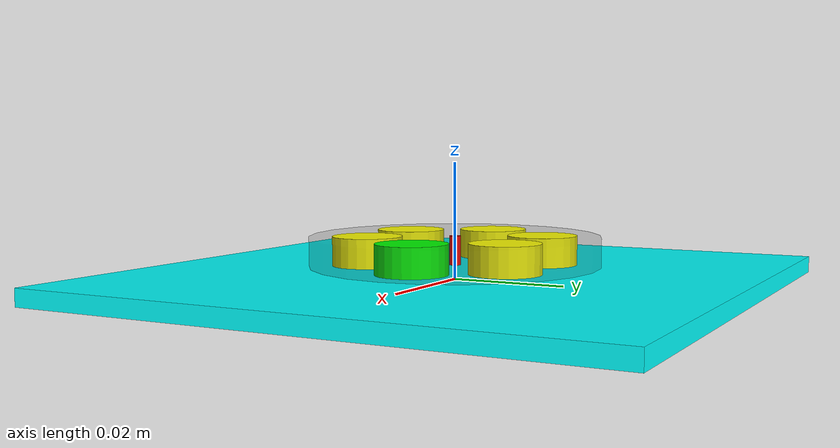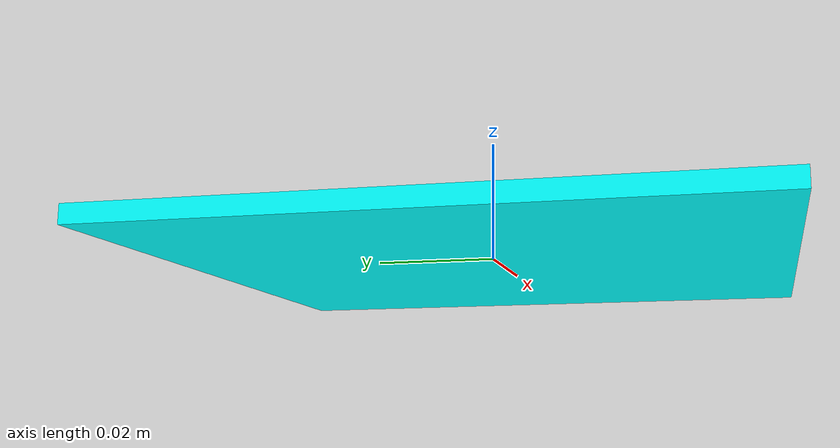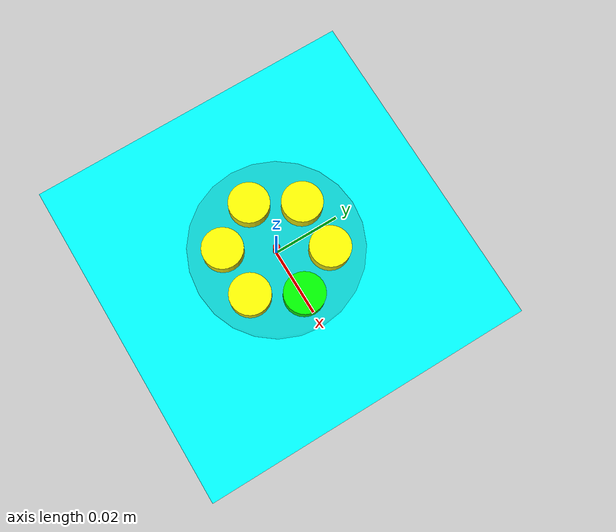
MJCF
<mujoco model="motor_test">
    <option integrator="RK4" timestep="1e-5" />

    <worldbody>
        <light diffuse=".5 .5 .5" pos="0 0 10" dir="0 0 -1"/>
        <!--台座の板（なくても良い）-->
        <body name="stand" pos="0 0 0" euler="0 0 0">
            <geom type="box" size="0.05 0.05 0.0015" rgba="0 1 1 1" pos="0 0 0" mass="1.0"/>
        </body>

        <!--回転する円盤-->>
        <body name="round_disk" pos="0 0 0.005" euler="0 0 0">
            <joint name="disk_joint" type="hinge" axis="0 0 1" limited="false" damping="0.1"/>
            <geom type="cylinder" size="0.025 0.0025" rgba="0.2 0.2 0.2 0.1" pos="0 0 0" density="2700"/>
            <!--Sensorの取り付け位置-->
            <site name="sensor_mount" type="cylinder" size="0.001 0.00251" pos="0 0 0" rgba="1 0 0 1"/>
            <!--回転がわかりやすいようにマーカー-->
            <site name="maker1" type="cylinder" size="0.006 0.00251" pos=" 0.015 0 0" rgba="0 1 0 1"/>
            <site name="maker2" type="cylinder" size="0.006 0.00251" pos=" 0.0075  0.013  0" rgba="1 1 0 1"/>
            <site name="maker3" type="cylinder" size="0.006 0.00251" pos="-0.0075  0.0130 0" rgba="1 1 0 1"/>
            <site name="maker4" type="cylinder" size="0.006 0.00251" pos="-0.0150  0.0000 0" rgba="1 1 0 1"/>
            <site name="maker5" type="cylinder" size="0.006 0.00251" pos="-0.0075 -0.0130 0" rgba="1 1 0 1"/>
            <site name="maker6" type="cylinder" size="0.006 0.00251" pos=" 0.0075 -0.0130 0" rgba="1 1 0 1"/>
        </body>
    </worldbody>

    <actuator>
        <motor name="motor"  joint="disk_joint"  gear="2.0"/>
    </actuator>
    <sensor>
        <torque name="disk_torque_sensor" site="sensor_mount"/>
        <gyro name="gyro_sensor" site="sensor_mount"/>
    </sensor>

</mujoco>
